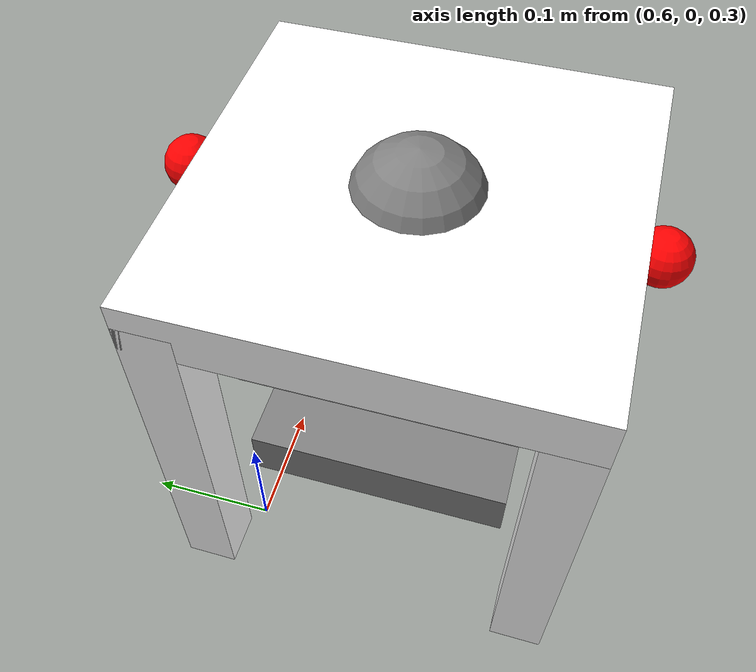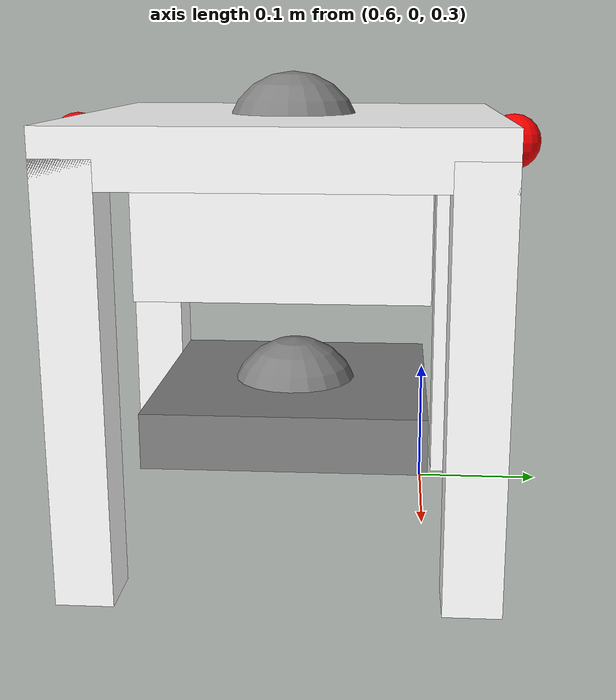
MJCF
<mujoco model="stool_support">
  <compiler angle="radian" />

  <default>
    <default class="stool_leg">
      <geom type="box" size="0.02 0.02 0.15"/>
    </default>
  </default>

  <worldbody>
   <body name="stool_support" pos="0.7 -0.1 0.4">

      <site name="stool_support_root" pos="0 0 0" size="0.05" type="sphere" rgba="0.5 0.5 0.5 1"/>
      <geom type="box" size="0.1 0.1 0.02" pos="0 0 0"/>
    </body>
  </worldbody>

  <asset>
    <material name="white_wood" rgba="1 1 1 1" />
  </asset>

  <worldbody>
   <body name="stool" pos="0.7 -0.1 0.6">
      <inertial mass="2.0" pos="0.0 0 -0.2" diaginertia="0.0334 0.02167 0.04167"/>

      <freejoint name="stool_root" />
      <site name="stool_root" pos="0 0 0" size="0.05" type="sphere" rgba="0.5 0.5 0.5 1"/>
      <site name="left_hand_contact" pos="0 0.16 0" size="0.02" type="sphere" rgba="1 0 0 1"/>
      <site name="right_hand_contact" pos="0 -0.16 0" size="0.02" type="sphere" rgba="1 0 0 1"/>

      <geom name="seat" type="box" size="0.15 0.15 0.02" pos="0 0 0" material="white_wood"/>
      <geom type="box" size="0.1 0.1 0.05" pos="0 0 -0.05" material="white_wood"/>

      <geom name="leg1" class="stool_leg" pos="0.13 0.13 -0.15" material="white_wood"/>

      <geom name="leg2" class="stool_leg" pos="0.13 -0.13 -0.15" material="white_wood"/>

      <geom name="leg3" class="stool_leg" pos="-0.13 0.13 -0.15" material="white_wood"/>

      <geom name="leg4" class="stool_leg" pos="-0.13 -0.13 -0.15" material="white_wood"/>
    </body>
  </worldbody>

  <sensor>
    <framepos name="stool_pos" objtype="xbody" objname="stool"/>
    <framequat name="stool_quat" objtype="xbody" objname="stool"/>
  </sensor>

</mujoco>
